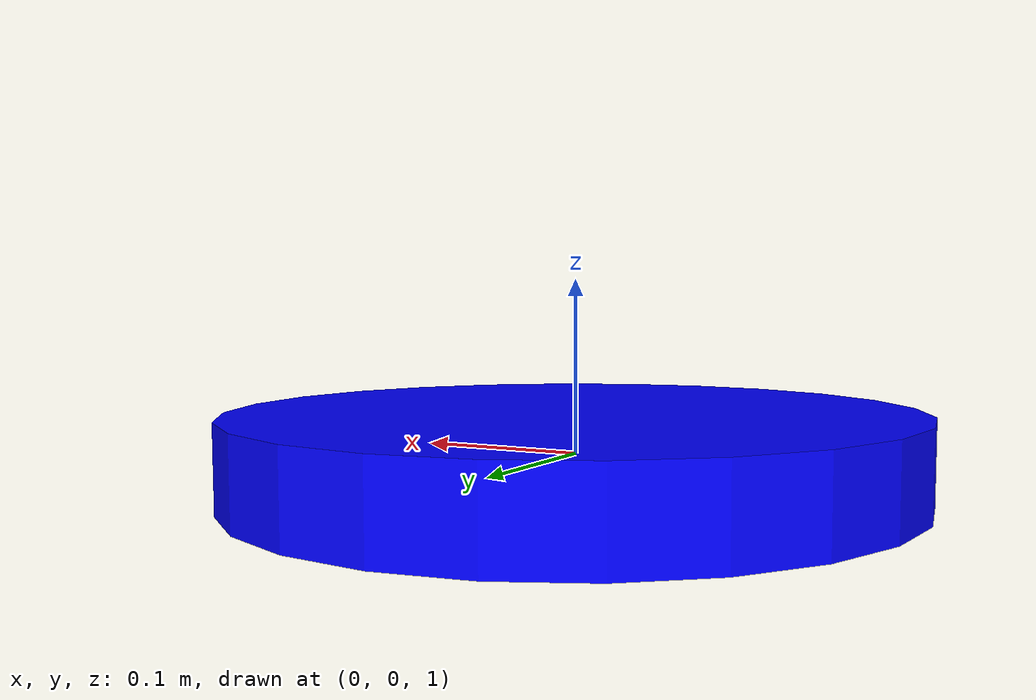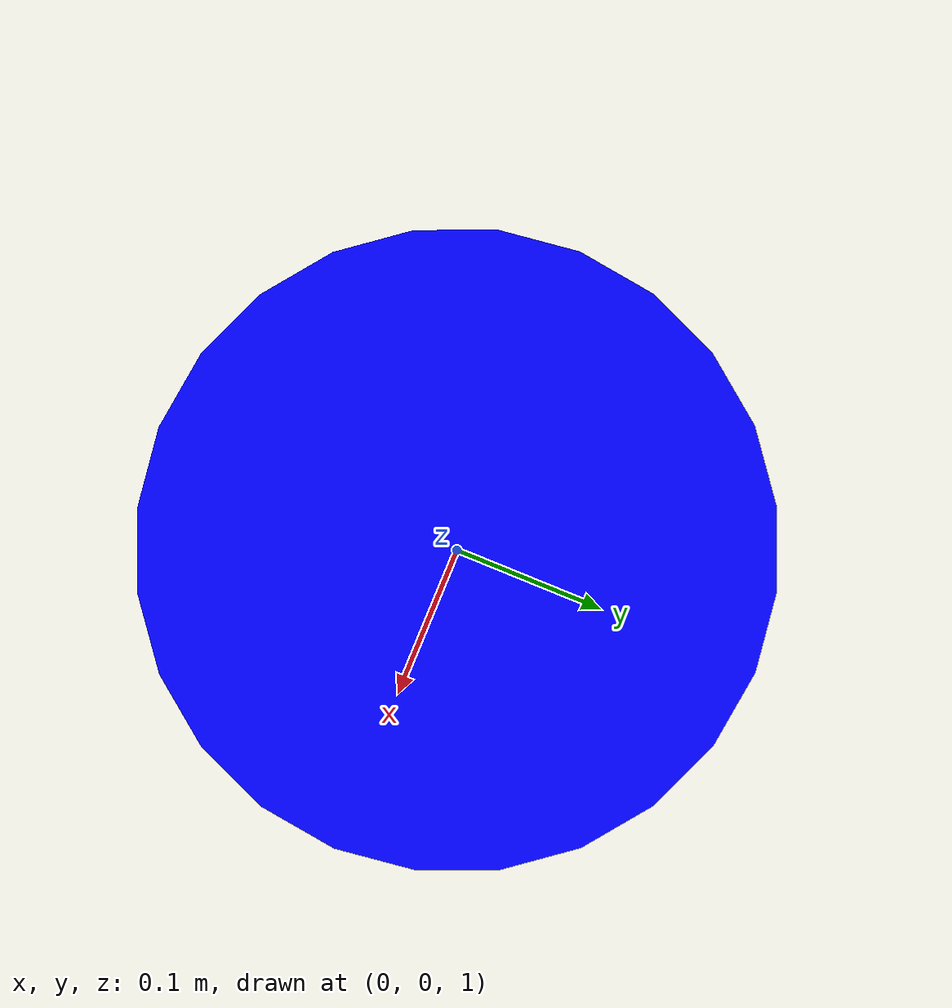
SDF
<?xml version="1.0" ?>
<sdf version="1.6">
  <model name="simple_drone">
    <pose>0 0 0.5 0 0 0</pose>

    <!-- Base du drone -->
    <link name="base_link">
      <pose>0 0 0.5 0 0 0</pose>
      <inertial>
        <mass>1.0</mass>
        <inertia>
          <ixx>0.1</ixx>
          <iyy>0.1</iyy>
          <izz>0.1</izz>
        </inertia>
      </inertial>

      <!-- Collision -->
      <collision name="collision">
        <geometry>
          <cylinder>
            <radius>0.2</radius>
            <length>0.05</length>
          </cylinder>
        </geometry>
      </collision>

      <!-- Visuel -->
      <visual name="visual">
        <geometry>
          <cylinder>
            <radius>0.2</radius>
            <length>0.05</length>
          </cylinder>
        </geometry>
        <material>
          <ambient>0 0 1 1</ambient>
          <diffuse>0 0 1 1</diffuse>
        </material>
      </visual>

      <!-- Fixe le drone à Z=0.5 -->
      <gravity>false</gravity>

            <!-- Camera sensor -->
      <sensor name="camera" type="camera">
        <pose>0.2 0 0.1 0 0 0</pose> <!-- Position avant du drone -->
        <always_on>true</always_on>
        <update_rate>30</update_rate>

        <camera>
          <horizontal_fov>1.3962634</horizontal_fov>
          <image>
            <width>640</width>
            <height>480</height>
            <format>R8G8B8</format>
          </image>
          <clip>
            <near>0.1</near>
            <far>100</far>
          </clip>
        </camera>

        <plugin name="camera_controller" filename="libgazebo_ros_camera.so">
          <ros>
            <namespace>/simple_drone</namespace>
            <remapping>image:=camera/image_raw</remapping>
            <remapping>camera_info:=camera/camera_info</remapping>
          </ros>
          <frameName>camera_link</frameName>
        </plugin>
      </sensor>
    </link>

    <plugin name="simple_drone_movement" filename="libgazebo_ros_planar_move.so">
      <ros>
        <namespace>/simple_drone</namespace>
        <remapping>cmd_vel:=cmd_vel</remapping>
      </ros>
    </plugin>

  </model>
</sdf>
